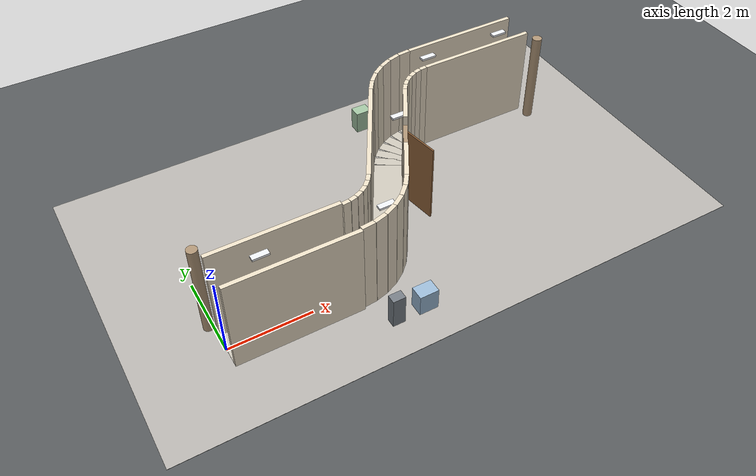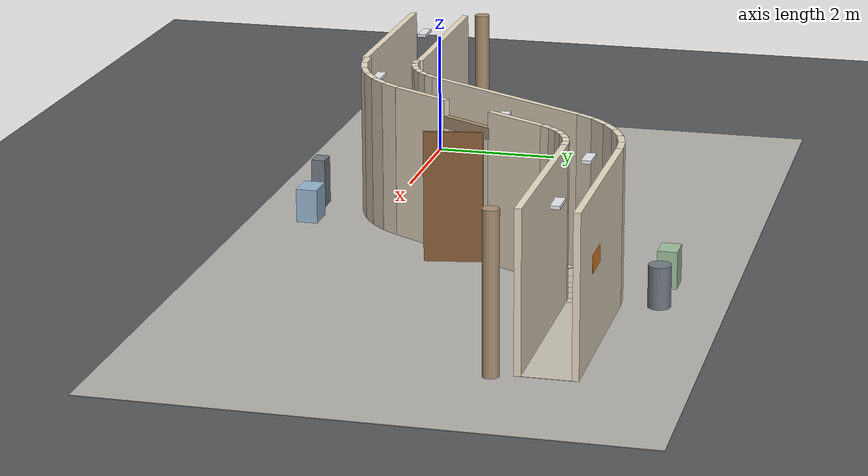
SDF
<sdf version='1.7'>
  <world name='slam_s_curve_corridor'>
    <light name='sun' type='directional'>
      <cast_shadows>1</cast_shadows>
      <pose>0 0 10 0 0 0</pose>
      <diffuse>0.75 0.75 0.75 1</diffuse>
      <specular>0.2 0.2 0.2 1</specular>
      <attenuation>
        <range>1000</range>
        <constant>0.9</constant>
        <linear>0.01</linear>
        <quadratic>0.001</quadratic>
      </attenuation>
      <direction>-0.4 0.1 -0.9</direction>
    </light>
    <light name="s_light_1" type="point">
  <pose>1.0000 0.0000 2.2800 0.0000 0.0000 0.0000</pose>
  <diffuse>1.000 0.980 0.920 1.000</diffuse>
  <specular>0.200 0.200 0.200 1.000</specular>
  <attenuation>
    <range>8</range>
    <constant>0.4</constant>
    <linear>0.2571</linear>
    <quadratic>0.0429</quadratic>
  </attenuation>
  <cast_shadows>1</cast_shadows>
</light>
    <light name="s_light_2" type="point">
  <pose>3.7000 0.3000 2.2800 0.0000 0.0000 0.0000</pose>
  <diffuse>1.000 0.980 0.920 1.000</diffuse>
  <specular>0.200 0.200 0.200 1.000</specular>
  <attenuation>
    <range>8</range>
    <constant>0.4</constant>
    <linear>0.2571</linear>
    <quadratic>0.0429</quadratic>
  </attenuation>
  <cast_shadows>1</cast_shadows>
</light>
    <light name="s_light_3" type="point">
  <pose>5.4000 2.2000 2.2800 0.0000 0.0000 0.0000</pose>
  <diffuse>1.000 0.980 0.920 1.000</diffuse>
  <specular>0.200 0.200 0.200 1.000</specular>
  <attenuation>
    <range>8</range>
    <constant>0.4</constant>
    <linear>0.2571</linear>
    <quadratic>0.0429</quadratic>
  </attenuation>
  <cast_shadows>1</cast_shadows>
</light>
    <light name="s_light_4" type="point">
  <pose>7.0000 3.9000 2.2800 0.0000 0.0000 0.0000</pose>
  <diffuse>1.000 0.980 0.920 1.000</diffuse>
  <specular>0.200 0.200 0.200 1.000</specular>
  <attenuation>
    <range>8</range>
    <constant>0.4</constant>
    <linear>0.2571</linear>
    <quadratic>0.0429</quadratic>
  </attenuation>
  <cast_shadows>1</cast_shadows>
</light>
    <light name="s_light_5" type="point">
  <pose>9.3000 4.0000 2.2800 0.0000 0.0000 0.0000</pose>
  <diffuse>1.000 0.980 0.920 1.000</diffuse>
  <specular>0.200 0.200 0.200 1.000</specular>
  <attenuation>
    <range>8</range>
    <constant>0.4</constant>
    <linear>0.2571</linear>
    <quadratic>0.0429</quadratic>
  </attenuation>
  <cast_shadows>1</cast_shadows>
</light>
    <gravity>0 0 -9.8</gravity>
    <physics type='ode'>
      <max_step_size>0.001</max_step_size>
      <real_time_factor>1</real_time_factor>
      <real_time_update_rate>1000</real_time_update_rate>
    </physics>
    <scene>
      <ambient>0.440 0.430 0.410 1</ambient>
      <background>0.800 0.800 0.790 1</background>
      <shadows>1</shadows>
    </scene>
    <model name="ground_plane">
  <static>1</static>
  <link name="link">
    <collision name="plane_collision">
  <pose>0.0000 0.0000 0.0000 0.0000 0.0000 0.0000</pose>
  <geometry><box><size>40.0000 40.0000 0.0200</size></box></geometry>
</collision>
<visual name="plane_visual">
  <pose>0.0000 0.0000 0.0000 0.0000 0.0000 0.0000</pose>
  <cast_shadows>1</cast_shadows>
  <geometry><box><size>40.0000 40.0000 0.0200</size></box></geometry>
  <material>
  <ambient>0.340 0.350 0.360 1.000</ambient>
  <diffuse>0.340 0.350 0.360 1.000</diffuse>
  <specular>0.080 0.080 0.080 1.000</specular>
</material>
</visual>
  </link>
</model>
    <model name="s_corridor_shell">
  <static>1</static>
  <link name="shell">
    <collision name="s1_left_collision">
  <pose>1.5000 0.4500 1.2000 0.0000 0.0000 0.0000</pose>
  <geometry><box><size>3.0000 0.1000 2.4000</size></box></geometry>
</collision>
<visual name="s1_left_visual">
  <pose>1.5000 0.4500 1.2000 0.0000 0.0000 0.0000</pose>
  <cast_shadows>1</cast_shadows>
  <geometry><box><size>3.0000 0.1000 2.4000</size></box></geometry>
  <material>
  <ambient>0.920 0.870 0.780 1.000</ambient>
  <diffuse>0.920 0.870 0.780 1.000</diffuse>
  <specular>0.080 0.080 0.080 1.000</specular>
</material>
</visual>
    <collision name="s1_right_collision">
  <pose>1.5000 -0.4500 1.2000 0.0000 0.0000 0.0000</pose>
  <geometry><box><size>3.0000 0.1000 2.4000</size></box></geometry>
</collision>
<visual name="s1_right_visual">
  <pose>1.5000 -0.4500 1.2000 0.0000 0.0000 0.0000</pose>
  <cast_shadows>1</cast_shadows>
  <geometry><box><size>3.0000 0.1000 2.4000</size></box></geometry>
  <material>
  <ambient>0.920 0.870 0.780 1.000</ambient>
  <diffuse>0.920 0.870 0.780 1.000</diffuse>
  <specular>0.080 0.080 0.080 1.000</specular>
</material>
</visual>
    <collision name="s2_left_collision">
  <pose>4.6441 2.2152 1.2000 0.0000 0.0000 1.0472</pose>
  <geometry><box><size>3.0000 0.1000 2.4000</size></box></geometry>
</collision>
<visual name="s2_left_visual">
  <pose>4.6441 2.2152 1.2000 0.0000 0.0000 1.0472</pose>
  <cast_shadows>1</cast_shadows>
  <geometry><box><size>3.0000 0.1000 2.4000</size></box></geometry>
  <material>
  <ambient>0.920 0.870 0.780 1.000</ambient>
  <diffuse>0.920 0.870 0.780 1.000</diffuse>
  <specular>0.080 0.080 0.080 1.000</specular>
</material>
</visual>
    <collision name="s2_right_a_collision">
  <pose>4.8494 0.9708 1.2000 0.0000 0.0000 1.0472</pose>
  <geometry><box><size>1.0500 0.1000 2.4000</size></box></geometry>
</collision>
<visual name="s2_right_a_visual">
  <pose>4.8494 0.9708 1.2000 0.0000 0.0000 1.0472</pose>
  <cast_shadows>1</cast_shadows>
  <geometry><box><size>1.0500 0.1000 2.4000</size></box></geometry>
  <material>
  <ambient>0.920 0.870 0.780 1.000</ambient>
  <diffuse>0.920 0.870 0.780 1.000</diffuse>
  <specular>0.080 0.080 0.080 1.000</specular>
</material>
</visual>
    <collision name="s2_right_b_collision">
  <pose>5.8244 2.6596 1.2000 0.0000 0.0000 1.0472</pose>
  <geometry><box><size>1.0500 0.1000 2.4000</size></box></geometry>
</collision>
<visual name="s2_right_b_visual">
  <pose>5.8244 2.6596 1.2000 0.0000 0.0000 1.0472</pose>
  <cast_shadows>1</cast_shadows>
  <geometry><box><size>1.0500 0.1000 2.4000</size></box></geometry>
  <material>
  <ambient>0.920 0.870 0.780 1.000</ambient>
  <diffuse>0.920 0.870 0.780 1.000</diffuse>
  <specular>0.080 0.080 0.080 1.000</specular>
</material>
</visual>
    <collision name="s3_left_collision">
  <pose>8.4810 4.4305 1.2000 0.0000 0.0000 0.0000</pose>
  <geometry><box><size>3.0000 0.1000 2.4000</size></box></geometry>
</collision>
<visual name="s3_left_visual">
  <pose>8.4810 4.4305 1.2000 0.0000 0.0000 0.0000</pose>
  <cast_shadows>1</cast_shadows>
  <geometry><box><size>3.0000 0.1000 2.4000</size></box></geometry>
  <material>
  <ambient>0.920 0.870 0.780 1.000</ambient>
  <diffuse>0.920 0.870 0.780 1.000</diffuse>
  <specular>0.080 0.080 0.080 1.000</specular>
</material>
</visual>
    <collision name="s3_right_collision">
  <pose>8.4810 3.6305 1.2000 0.0000 0.0000 0.0000</pose>
  <geometry><box><size>3.0000 0.1000 2.4000</size></box></geometry>
</collision>
<visual name="s3_right_visual">
  <pose>8.4810 3.6305 1.2000 0.0000 0.0000 0.0000</pose>
  <cast_shadows>1</cast_shadows>
  <geometry><box><size>3.0000 0.1000 2.4000</size></box></geometry>
  <material>
  <ambient>0.920 0.870 0.780 1.000</ambient>
  <diffuse>0.920 0.870 0.780 1.000</diffuse>
  <specular>0.080 0.080 0.080 1.000</specular>
</material>
</visual>
    <collision name="arc1_inner_1_collision">
  <pose>3.0896 0.4078 1.2000 0.0000 0.0000 0.0873</pose>
  <geometry><box><size>0.1800 0.1000 2.4000</size></box></geometry>
</collision>
<visual name="arc1_inner_1_visual">
  <pose>3.0896 0.4078 1.2000 0.0000 0.0000 0.0873</pose>
  <cast_shadows>1</cast_shadows>
  <geometry><box><size>0.1800 0.1000 2.4000</size></box></geometry>
  <material>
  <ambient>0.920 0.870 0.780 1.000</ambient>
  <diffuse>0.920 0.870 0.780 1.000</diffuse>
  <specular>0.080 0.080 0.080 1.000</specular>
</material>
</visual>
    <collision name="arc1_inner_2_collision">
  <pose>3.2662 0.4390 1.2000 0.0000 0.0000 0.2618</pose>
  <geometry><box><size>0.1800 0.1000 2.4000</size></box></geometry>
</collision>
<visual name="arc1_inner_2_visual">
  <pose>3.2662 0.4390 1.2000 0.0000 0.0000 0.2618</pose>
  <cast_shadows>1</cast_shadows>
  <geometry><box><size>0.1800 0.1000 2.4000</size></box></geometry>
  <material>
  <ambient>0.920 0.870 0.780 1.000</ambient>
  <diffuse>0.920 0.870 0.780 1.000</diffuse>
  <specular>0.080 0.080 0.080 1.000</specular>
</material>
</visual>
    <collision name="arc1_inner_3_collision">
  <pose>3.4346 0.5003 1.2000 0.0000 0.0000 0.4363</pose>
  <geometry><box><size>0.1800 0.1000 2.4000</size></box></geometry>
</collision>
<visual name="arc1_inner_3_visual">
  <pose>3.4346 0.5003 1.2000 0.0000 0.0000 0.4363</pose>
  <cast_shadows>1</cast_shadows>
  <geometry><box><size>0.1800 0.1000 2.4000</size></box></geometry>
  <material>
  <ambient>0.920 0.870 0.780 1.000</ambient>
  <diffuse>0.920 0.870 0.780 1.000</diffuse>
  <specular>0.080 0.080 0.080 1.000</specular>
</material>
</visual>
    <collision name="arc1_inner_4_collision">
  <pose>3.5899 0.5899 1.2000 0.0000 0.0000 0.6109</pose>
  <geometry><box><size>0.1800 0.1000 2.4000</size></box></geometry>
</collision>
<visual name="arc1_inner_4_visual">
  <pose>3.5899 0.5899 1.2000 0.0000 0.0000 0.6109</pose>
  <cast_shadows>1</cast_shadows>
  <geometry><box><size>0.1800 0.1000 2.4000</size></box></geometry>
  <material>
  <ambient>0.920 0.870 0.780 1.000</ambient>
  <diffuse>0.920 0.870 0.780 1.000</diffuse>
  <specular>0.080 0.080 0.080 1.000</specular>
</material>
</visual>
    <collision name="arc1_inner_5_collision">
  <pose>3.7272 0.7052 1.2000 0.0000 0.0000 0.7854</pose>
  <geometry><box><size>0.1800 0.1000 2.4000</size></box></geometry>
</collision>
<visual name="arc1_inner_5_visual">
  <pose>3.7272 0.7052 1.2000 0.0000 0.0000 0.7854</pose>
  <cast_shadows>1</cast_shadows>
  <geometry><box><size>0.1800 0.1000 2.4000</size></box></geometry>
  <material>
  <ambient>0.920 0.870 0.780 1.000</ambient>
  <diffuse>0.920 0.870 0.780 1.000</diffuse>
  <specular>0.080 0.080 0.080 1.000</specular>
</material>
</visual>
    <collision name="arc1_inner_6_collision">
  <pose>3.8425 0.8425 1.2000 0.0000 0.0000 0.9599</pose>
  <geometry><box><size>0.1800 0.1000 2.4000</size></box></geometry>
</collision>
<visual name="arc1_inner_6_visual">
  <pose>3.8425 0.8425 1.2000 0.0000 0.0000 0.9599</pose>
  <cast_shadows>1</cast_shadows>
  <geometry><box><size>0.1800 0.1000 2.4000</size></box></geometry>
  <material>
  <ambient>0.920 0.870 0.780 1.000</ambient>
  <diffuse>0.920 0.870 0.780 1.000</diffuse>
  <specular>0.080 0.080 0.080 1.000</specular>
</material>
</visual>
    <collision name="arc1_outer_1_collision">
  <pose>3.1591 -0.3861 1.2000 0.0000 0.0000 0.0873</pose>
  <geometry><box><size>0.3194 0.1000 2.4000</size></box></geometry>
</collision>
<visual name="arc1_outer_1_visual">
  <pose>3.1591 -0.3861 1.2000 0.0000 0.0000 0.0873</pose>
  <cast_shadows>1</cast_shadows>
  <geometry><box><size>0.3194 0.1000 2.4000</size></box></geometry>
  <material>
  <ambient>0.920 0.870 0.780 1.000</ambient>
  <diffuse>0.920 0.870 0.780 1.000</diffuse>
  <specular>0.080 0.080 0.080 1.000</specular>
</material>
</visual>
    <collision name="arc1_outer_2_collision">
  <pose>3.4725 -0.3308 1.2000 0.0000 0.0000 0.2618</pose>
  <geometry><box><size>0.3194 0.1000 2.4000</size></box></geometry>
</collision>
<visual name="arc1_outer_2_visual">
  <pose>3.4725 -0.3308 1.2000 0.0000 0.0000 0.2618</pose>
  <cast_shadows>1</cast_shadows>
  <geometry><box><size>0.3194 0.1000 2.4000</size></box></geometry>
  <material>
  <ambient>0.920 0.870 0.780 1.000</ambient>
  <diffuse>0.920 0.870 0.780 1.000</diffuse>
  <specular>0.080 0.080 0.080 1.000</specular>
</material>
</visual>
    <collision name="arc1_outer_3_collision">
  <pose>3.7715 -0.2220 1.2000 0.0000 0.0000 0.4363</pose>
  <geometry><box><size>0.3194 0.1000 2.4000</size></box></geometry>
</collision>
<visual name="arc1_outer_3_visual">
  <pose>3.7715 -0.2220 1.2000 0.0000 0.0000 0.4363</pose>
  <cast_shadows>1</cast_shadows>
  <geometry><box><size>0.3194 0.1000 2.4000</size></box></geometry>
  <material>
  <ambient>0.920 0.870 0.780 1.000</ambient>
  <diffuse>0.920 0.870 0.780 1.000</diffuse>
  <specular>0.080 0.080 0.080 1.000</specular>
</material>
</visual>
    <collision name="arc1_outer_4_collision">
  <pose>4.0470 -0.0629 1.2000 0.0000 0.0000 0.6109</pose>
  <geometry><box><size>0.3194 0.1000 2.4000</size></box></geometry>
</collision>
<visual name="arc1_outer_4_visual">
  <pose>4.0470 -0.0629 1.2000 0.0000 0.0000 0.6109</pose>
  <cast_shadows>1</cast_shadows>
  <geometry><box><size>0.3194 0.1000 2.4000</size></box></geometry>
  <material>
  <ambient>0.920 0.870 0.780 1.000</ambient>
  <diffuse>0.920 0.870 0.780 1.000</diffuse>
  <specular>0.080 0.080 0.080 1.000</specular>
</material>
</visual>
    <collision name="arc1_outer_5_collision">
  <pose>4.2908 0.1416 1.2000 0.0000 0.0000 0.7854</pose>
  <geometry><box><size>0.3194 0.1000 2.4000</size></box></geometry>
</collision>
<visual name="arc1_outer_5_visual">
  <pose>4.2908 0.1416 1.2000 0.0000 0.0000 0.7854</pose>
  <cast_shadows>1</cast_shadows>
  <geometry><box><size>0.3194 0.1000 2.4000</size></box></geometry>
  <material>
  <ambient>0.920 0.870 0.780 1.000</ambient>
  <diffuse>0.920 0.870 0.780 1.000</diffuse>
  <specular>0.080 0.080 0.080 1.000</specular>
</material>
</visual>
    <collision name="arc1_outer_6_collision">
  <pose>4.4953 0.3854 1.2000 0.0000 0.0000 0.9599</pose>
  <geometry><box><size>0.3194 0.1000 2.4000</size></box></geometry>
</collision>
<visual name="arc1_outer_6_visual">
  <pose>4.4953 0.3854 1.2000 0.0000 0.0000 0.9599</pose>
  <cast_shadows>1</cast_shadows>
  <geometry><box><size>0.3194 0.1000 2.4000</size></box></geometry>
  <material>
  <ambient>0.920 0.870 0.780 1.000</ambient>
  <diffuse>0.920 0.870 0.780 1.000</diffuse>
  <specular>0.080 0.080 0.080 1.000</specular>
</material>
</visual>
    <collision name="arc2_inner_1_collision">
  <pose>6.1385 3.1880 1.2000 0.0000 0.0000 0.9599</pose>
  <geometry><box><size>0.1800 0.1000 2.4000</size></box></geometry>
</collision>
<visual name="arc2_inner_1_visual">
  <pose>6.1385 3.1880 1.2000 0.0000 0.0000 0.9599</pose>
  <cast_shadows>1</cast_shadows>
  <geometry><box><size>0.1800 0.1000 2.4000</size></box></geometry>
  <material>
  <ambient>0.920 0.870 0.780 1.000</ambient>
  <diffuse>0.920 0.870 0.780 1.000</diffuse>
  <specular>0.080 0.080 0.080 1.000</specular>
</material>
</visual>
    <collision name="arc2_inner_2_collision">
  <pose>6.2537 3.3253 1.2000 0.0000 0.0000 0.7854</pose>
  <geometry><box><size>0.1800 0.1000 2.4000</size></box></geometry>
</collision>
<visual name="arc2_inner_2_visual">
  <pose>6.2537 3.3253 1.2000 0.0000 0.0000 0.7854</pose>
  <cast_shadows>1</cast_shadows>
  <geometry><box><size>0.1800 0.1000 2.4000</size></box></geometry>
  <material>
  <ambient>0.920 0.870 0.780 1.000</ambient>
  <diffuse>0.920 0.870 0.780 1.000</diffuse>
  <specular>0.080 0.080 0.080 1.000</specular>
</material>
</visual>
    <collision name="arc2_inner_3_collision">
  <pose>6.3911 3.4405 1.2000 0.0000 0.0000 0.6109</pose>
  <geometry><box><size>0.1800 0.1000 2.4000</size></box></geometry>
</collision>
<visual name="arc2_inner_3_visual">
  <pose>6.3911 3.4405 1.2000 0.0000 0.0000 0.6109</pose>
  <cast_shadows>1</cast_shadows>
  <geometry><box><size>0.1800 0.1000 2.4000</size></box></geometry>
  <material>
  <ambient>0.920 0.870 0.780 1.000</ambient>
  <diffuse>0.920 0.870 0.780 1.000</diffuse>
  <specular>0.080 0.080 0.080 1.000</specular>
</material>
</visual>
    <collision name="arc2_inner_4_collision">
  <pose>6.5463 3.5302 1.2000 0.0000 0.0000 0.4363</pose>
  <geometry><box><size>0.1800 0.1000 2.4000</size></box></geometry>
</collision>
<visual name="arc2_inner_4_visual">
  <pose>6.5463 3.5302 1.2000 0.0000 0.0000 0.4363</pose>
  <cast_shadows>1</cast_shadows>
  <geometry><box><size>0.1800 0.1000 2.4000</size></box></geometry>
  <material>
  <ambient>0.920 0.870 0.780 1.000</ambient>
  <diffuse>0.920 0.870 0.780 1.000</diffuse>
  <specular>0.080 0.080 0.080 1.000</specular>
</material>
</visual>
    <collision name="arc2_inner_5_collision">
  <pose>6.7148 3.5915 1.2000 0.0000 0.0000 0.2618</pose>
  <geometry><box><size>0.1800 0.1000 2.4000</size></box></geometry>
</collision>
<visual name="arc2_inner_5_visual">
  <pose>6.7148 3.5915 1.2000 0.0000 0.0000 0.2618</pose>
  <cast_shadows>1</cast_shadows>
  <geometry><box><size>0.1800 0.1000 2.4000</size></box></geometry>
  <material>
  <ambient>0.920 0.870 0.780 1.000</ambient>
  <diffuse>0.920 0.870 0.780 1.000</diffuse>
  <specular>0.080 0.080 0.080 1.000</specular>
</material>
</visual>
    <collision name="arc2_inner_6_collision">
  <pose>6.8913 3.6226 1.2000 0.0000 0.0000 0.0873</pose>
  <geometry><box><size>0.1800 0.1000 2.4000</size></box></geometry>
</collision>
<visual name="arc2_inner_6_visual">
  <pose>6.8913 3.6226 1.2000 0.0000 0.0000 0.0873</pose>
  <cast_shadows>1</cast_shadows>
  <geometry><box><size>0.1800 0.1000 2.4000</size></box></geometry>
  <material>
  <ambient>0.920 0.870 0.780 1.000</ambient>
  <diffuse>0.920 0.870 0.780 1.000</diffuse>
  <specular>0.080 0.080 0.080 1.000</specular>
</material>
</visual>
    <collision name="arc2_outer_1_collision">
  <pose>5.4857 3.6451 1.2000 0.0000 0.0000 0.9599</pose>
  <geometry><box><size>0.3194 0.1000 2.4000</size></box></geometry>
</collision>
<visual name="arc2_outer_1_visual">
  <pose>5.4857 3.6451 1.2000 0.0000 0.0000 0.9599</pose>
  <cast_shadows>1</cast_shadows>
  <geometry><box><size>0.3194 0.1000 2.4000</size></box></geometry>
  <material>
  <ambient>0.920 0.870 0.780 1.000</ambient>
  <diffuse>0.920 0.870 0.780 1.000</diffuse>
  <specular>0.080 0.080 0.080 1.000</specular>
</material>
</visual>
    <collision name="arc2_outer_2_collision">
  <pose>5.6902 3.8888 1.2000 0.0000 0.0000 0.7854</pose>
  <geometry><box><size>0.3194 0.1000 2.4000</size></box></geometry>
</collision>
<visual name="arc2_outer_2_visual">
  <pose>5.6902 3.8888 1.2000 0.0000 0.0000 0.7854</pose>
  <cast_shadows>1</cast_shadows>
  <geometry><box><size>0.3194 0.1000 2.4000</size></box></geometry>
  <material>
  <ambient>0.920 0.870 0.780 1.000</ambient>
  <diffuse>0.920 0.870 0.780 1.000</diffuse>
  <specular>0.080 0.080 0.080 1.000</specular>
</material>
</visual>
    <collision name="arc2_outer_3_collision">
  <pose>5.9340 4.0934 1.2000 0.0000 0.0000 0.6109</pose>
  <geometry><box><size>0.3194 0.1000 2.4000</size></box></geometry>
</collision>
<visual name="arc2_outer_3_visual">
  <pose>5.9340 4.0934 1.2000 0.0000 0.0000 0.6109</pose>
  <cast_shadows>1</cast_shadows>
  <geometry><box><size>0.3194 0.1000 2.4000</size></box></geometry>
  <material>
  <ambient>0.920 0.870 0.780 1.000</ambient>
  <diffuse>0.920 0.870 0.780 1.000</diffuse>
  <specular>0.080 0.080 0.080 1.000</specular>
</material>
</visual>
    <collision name="arc2_outer_4_collision">
  <pose>6.2095 4.2525 1.2000 0.0000 0.0000 0.4363</pose>
  <geometry><box><size>0.3194 0.1000 2.4000</size></box></geometry>
</collision>
<visual name="arc2_outer_4_visual">
  <pose>6.2095 4.2525 1.2000 0.0000 0.0000 0.4363</pose>
  <cast_shadows>1</cast_shadows>
  <geometry><box><size>0.3194 0.1000 2.4000</size></box></geometry>
  <material>
  <ambient>0.920 0.870 0.780 1.000</ambient>
  <diffuse>0.920 0.870 0.780 1.000</diffuse>
  <specular>0.080 0.080 0.080 1.000</specular>
</material>
</visual>
    <collision name="arc2_outer_5_collision">
  <pose>6.5085 4.3613 1.2000 0.0000 0.0000 0.2618</pose>
  <geometry><box><size>0.3194 0.1000 2.4000</size></box></geometry>
</collision>
<visual name="arc2_outer_5_visual">
  <pose>6.5085 4.3613 1.2000 0.0000 0.0000 0.2618</pose>
  <cast_shadows>1</cast_shadows>
  <geometry><box><size>0.3194 0.1000 2.4000</size></box></geometry>
  <material>
  <ambient>0.920 0.870 0.780 1.000</ambient>
  <diffuse>0.920 0.870 0.780 1.000</diffuse>
  <specular>0.080 0.080 0.080 1.000</specular>
</material>
</visual>
    <collision name="arc2_outer_6_collision">
  <pose>6.8219 4.4166 1.2000 0.0000 0.0000 0.0873</pose>
  <geometry><box><size>0.3194 0.1000 2.4000</size></box></geometry>
</collision>
<visual name="arc2_outer_6_visual">
  <pose>6.8219 4.4166 1.2000 0.0000 0.0000 0.0873</pose>
  <cast_shadows>1</cast_shadows>
  <geometry><box><size>0.3194 0.1000 2.4000</size></box></geometry>
  <material>
  <ambient>0.920 0.870 0.780 1.000</ambient>
  <diffuse>0.920 0.870 0.780 1.000</diffuse>
  <specular>0.080 0.080 0.080 1.000</specular>
</material>
</visual>
    <visual name="s_fixture_1_visual">
  <pose>1.0000 0.0000 2.3200 0.0000 0.0000 0.0000</pose>
  <cast_shadows>1</cast_shadows>
  <geometry><box><size>0.3800 0.1400 0.0500</size></box></geometry>
  <material>
  <ambient>0.920 0.930 0.950 1.000</ambient>
  <diffuse>0.920 0.930 0.950 1.000</diffuse>
  <specular>0.080 0.080 0.080 1.000</specular>
</material>
</visual>
    <visual name="s_fixture_2_visual">
  <pose>3.8000 0.0000 2.3200 0.0000 0.0000 0.0000</pose>
  <cast_shadows>1</cast_shadows>
  <geometry><box><size>0.3800 0.1400 0.0500</size></box></geometry>
  <material>
  <ambient>0.920 0.930 0.950 1.000</ambient>
  <diffuse>0.920 0.930 0.950 1.000</diffuse>
  <specular>0.080 0.080 0.080 1.000</specular>
</material>
</visual>
    <visual name="s_fixture_3_visual">
  <pose>5.5000 2.4000 2.3200 0.0000 0.0000 0.0000</pose>
  <cast_shadows>1</cast_shadows>
  <geometry><box><size>0.3800 0.1400 0.0500</size></box></geometry>
  <material>
  <ambient>0.920 0.930 0.950 1.000</ambient>
  <diffuse>0.920 0.930 0.950 1.000</diffuse>
  <specular>0.080 0.080 0.080 1.000</specular>
</material>
</visual>
    <visual name="s_fixture_4_visual">
  <pose>7.3000 4.0500 2.3200 0.0000 0.0000 0.0000</pose>
  <cast_shadows>1</cast_shadows>
  <geometry><box><size>0.3800 0.1400 0.0500</size></box></geometry>
  <material>
  <ambient>0.920 0.930 0.950 1.000</ambient>
  <diffuse>0.920 0.930 0.950 1.000</diffuse>
  <specular>0.080 0.080 0.080 1.000</specular>
</material>
</visual>
    <visual name="s_fixture_5_visual">
  <pose>9.4000 4.0500 2.3200 0.0000 0.0000 0.0000</pose>
  <cast_shadows>1</cast_shadows>
  <geometry><box><size>0.3800 0.1400 0.0500</size></box></geometry>
  <material>
  <ambient>0.920 0.930 0.950 1.000</ambient>
  <diffuse>0.920 0.930 0.950 1.000</diffuse>
  <specular>0.080 0.080 0.080 1.000</specular>
</material>
</visual>
  </link>
</model>
    <model name="s_corridor_floor">
  <static>1</static>
  <link name="floor">
    <collision name="s_floor_pad_collision">
  <pose>5.0000 2.0000 0.0100 0.0000 0.0000 0.0000</pose>
  <geometry><box><size>14.0000 8.0000 0.0200</size></box></geometry>
</collision>
<visual name="s_floor_pad_visual">
  <pose>5.0000 2.0000 0.0100 0.0000 0.0000 0.0000</pose>
  <cast_shadows>1</cast_shadows>
  <geometry><box><size>14.0000 8.0000 0.0200</size></box></geometry>
  <material>
  <ambient>0.710 0.700 0.680 1.000</ambient>
  <diffuse>0.710 0.700 0.680 1.000</diffuse>
  <specular>0.080 0.080 0.080 1.000</specular>
</material>
</visual>
    <visual name="s_floor_1_visual">
  <pose>1.5000 0.0000 0.0170 0.0000 0.0000 0.0000</pose>
  <cast_shadows>1</cast_shadows>
  <geometry><box><size>3.0000 0.8000 0.0150</size></box></geometry>
  <material>
  <ambient>0.790 0.770 0.720 1.000</ambient>
  <diffuse>0.790 0.770 0.720 1.000</diffuse>
  <specular>0.080 0.080 0.080 1.000</specular>
</material>
</visual>
    <visual name="s_floor_2_visual">
  <pose>4.9905 2.0152 0.0170 0.0000 0.0000 1.0472</pose>
  <cast_shadows>1</cast_shadows>
  <geometry><box><size>3.0000 0.8000 0.0150</size></box></geometry>
  <material>
  <ambient>0.790 0.770 0.720 1.000</ambient>
  <diffuse>0.790 0.770 0.720 1.000</diffuse>
  <specular>0.080 0.080 0.080 1.000</specular>
</material>
</visual>
    <visual name="s_floor_3_visual">
  <pose>8.4810 4.0305 0.0170 0.0000 0.0000 0.0000</pose>
  <cast_shadows>1</cast_shadows>
  <geometry><box><size>3.0000 0.8000 0.0150</size></box></geometry>
  <material>
  <ambient>0.790 0.770 0.720 1.000</ambient>
  <diffuse>0.790 0.770 0.720 1.000</diffuse>
  <specular>0.080 0.080 0.080 1.000</specular>
</material>
</visual>
    <visual name="s_arc_floor_1_visual">
  <pose>3.1244 0.0109 0.0170 0.0000 0.0000 0.0873</pose>
  <cast_shadows>1</cast_shadows>
  <geometry><box><size>0.2497 0.8000 0.0150</size></box></geometry>
  <material>
  <ambient>0.790 0.770 0.720 1.000</ambient>
  <diffuse>0.790 0.770 0.720 1.000</diffuse>
  <specular>0.080 0.080 0.080 1.000</specular>
</material>
</visual>
    <visual name="s_arc_floor_2_visual">
  <pose>3.3693 0.0541 0.0170 0.0000 0.0000 0.2618</pose>
  <cast_shadows>1</cast_shadows>
  <geometry><box><size>0.2497 0.8000 0.0150</size></box></geometry>
  <material>
  <ambient>0.790 0.770 0.720 1.000</ambient>
  <diffuse>0.790 0.770 0.720 1.000</diffuse>
  <specular>0.080 0.080 0.080 1.000</specular>
</material>
</visual>
    <visual name="s_arc_floor_3_visual">
  <pose>3.6031 0.1391 0.0170 0.0000 0.0000 0.4363</pose>
  <cast_shadows>1</cast_shadows>
  <geometry><box><size>0.2497 0.8000 0.0150</size></box></geometry>
  <material>
  <ambient>0.790 0.770 0.720 1.000</ambient>
  <diffuse>0.790 0.770 0.720 1.000</diffuse>
  <specular>0.080 0.080 0.080 1.000</specular>
</material>
</visual>
    <visual name="s_arc_floor_4_visual">
  <pose>3.8185 0.2635 0.0170 0.0000 0.0000 0.6109</pose>
  <cast_shadows>1</cast_shadows>
  <geometry><box><size>0.2497 0.8000 0.0150</size></box></geometry>
  <material>
  <ambient>0.790 0.770 0.720 1.000</ambient>
  <diffuse>0.790 0.770 0.720 1.000</diffuse>
  <specular>0.080 0.080 0.080 1.000</specular>
</material>
</visual>
    <visual name="s_arc_floor_5_visual">
  <pose>4.0090 0.4234 0.0170 0.0000 0.0000 0.7854</pose>
  <cast_shadows>1</cast_shadows>
  <geometry><box><size>0.2497 0.8000 0.0150</size></box></geometry>
  <material>
  <ambient>0.790 0.770 0.720 1.000</ambient>
  <diffuse>0.790 0.770 0.720 1.000</diffuse>
  <specular>0.080 0.080 0.080 1.000</specular>
</material>
</visual>
    <visual name="s_arc_floor_6_visual">
  <pose>4.1689 0.6139 0.0170 0.0000 0.0000 0.9599</pose>
  <cast_shadows>1</cast_shadows>
  <geometry><box><size>0.2497 0.8000 0.0150</size></box></geometry>
  <material>
  <ambient>0.790 0.770 0.720 1.000</ambient>
  <diffuse>0.790 0.770 0.720 1.000</diffuse>
  <specular>0.080 0.080 0.080 1.000</specular>
</material>
</visual>
    <visual name="s_arc_floor_7_visual">
  <pose>5.8121 3.4165 0.0170 0.0000 0.0000 0.9599</pose>
  <cast_shadows>1</cast_shadows>
  <geometry><box><size>0.2497 0.8000 0.0150</size></box></geometry>
  <material>
  <ambient>0.790 0.770 0.720 1.000</ambient>
  <diffuse>0.790 0.770 0.720 1.000</diffuse>
  <specular>0.080 0.080 0.080 1.000</specular>
</material>
</visual>
    <visual name="s_arc_floor_8_visual">
  <pose>5.9720 3.6071 0.0170 0.0000 0.0000 0.7854</pose>
  <cast_shadows>1</cast_shadows>
  <geometry><box><size>0.2497 0.8000 0.0150</size></box></geometry>
  <material>
  <ambient>0.790 0.770 0.720 1.000</ambient>
  <diffuse>0.790 0.770 0.720 1.000</diffuse>
  <specular>0.080 0.080 0.080 1.000</specular>
</material>
</visual>
    <visual name="s_arc_floor_9_visual">
  <pose>6.1625 3.7670 0.0170 0.0000 0.0000 0.6109</pose>
  <cast_shadows>1</cast_shadows>
  <geometry><box><size>0.2497 0.8000 0.0150</size></box></geometry>
  <material>
  <ambient>0.790 0.770 0.720 1.000</ambient>
  <diffuse>0.790 0.770 0.720 1.000</diffuse>
  <specular>0.080 0.080 0.080 1.000</specular>
</material>
</visual>
    <visual name="s_arc_floor_10_visual">
  <pose>6.3779 3.8913 0.0170 0.0000 0.0000 0.4363</pose>
  <cast_shadows>1</cast_shadows>
  <geometry><box><size>0.2497 0.8000 0.0150</size></box></geometry>
  <material>
  <ambient>0.790 0.770 0.720 1.000</ambient>
  <diffuse>0.790 0.770 0.720 1.000</diffuse>
  <specular>0.080 0.080 0.080 1.000</specular>
</material>
</visual>
    <visual name="s_arc_floor_11_visual">
  <pose>6.6117 3.9764 0.0170 0.0000 0.0000 0.2618</pose>
  <cast_shadows>1</cast_shadows>
  <geometry><box><size>0.2497 0.8000 0.0150</size></box></geometry>
  <material>
  <ambient>0.790 0.770 0.720 1.000</ambient>
  <diffuse>0.790 0.770 0.720 1.000</diffuse>
  <specular>0.080 0.080 0.080 1.000</specular>
</material>
</visual>
    <visual name="s_arc_floor_12_visual">
  <pose>6.8566 4.0196 0.0170 0.0000 0.0000 0.0873</pose>
  <cast_shadows>1</cast_shadows>
  <geometry><box><size>0.2497 0.8000 0.0150</size></box></geometry>
  <material>
  <ambient>0.790 0.770 0.720 1.000</ambient>
  <diffuse>0.790 0.770 0.720 1.000</diffuse>
  <specular>0.080 0.080 0.080 1.000</specular>
</material>
</visual>
  </link>
</model>
    <model name="s_corridor_features">
  <static>1</static>
  <link name="features">
    <collision name="start_pillar_collision">
  <pose>-0.1000 0.7200 1.2000 0.0000 0.0000 0.0000</pose>
  <geometry><cylinder><radius>0.1200</radius><length>2.4000</length></cylinder></geometry>
</collision>
<visual name="start_pillar_visual">
  <pose>-0.1000 0.7200 1.2000 0.0000 0.0000 0.0000</pose>
  <geometry><cylinder><radius>0.1200</radius><length>2.4000</length></cylinder></geometry>
  <material>
  <ambient>0.680 0.580 0.460 1.000</ambient>
  <diffuse>0.680 0.580 0.460 1.000</diffuse>
  <specular>0.080 0.080 0.080 1.000</specular>
</material>
</visual>
    <collision name="end_pillar_collision">
  <pose>10.0500 3.2800 1.2000 0.0000 0.0000 0.0000</pose>
  <geometry><cylinder><radius>0.1200</radius><length>2.4000</length></cylinder></geometry>
</collision>
<visual name="end_pillar_visual">
  <pose>10.0500 3.2800 1.2000 0.0000 0.0000 0.0000</pose>
  <geometry><cylinder><radius>0.1200</radius><length>2.4000</length></cylinder></geometry>
  <material>
  <ambient>0.680 0.580 0.460 1.000</ambient>
  <diffuse>0.680 0.580 0.460 1.000</diffuse>
  <specular>0.080 0.080 0.080 1.000</specular>
</material>
</visual>
    <visual name="door_header_visual">
  <pose>5.3369 1.8152 2.0600 0.0000 0.0000 1.0472</pose>
  <cast_shadows>1</cast_shadows>
  <geometry><box><size>0.9500 0.1000 0.1800</size></box></geometry>
  <material>
  <ambient>0.680 0.580 0.460 1.000</ambient>
  <diffuse>0.680 0.580 0.460 1.000</diffuse>
  <specular>0.080 0.080 0.080 1.000</specular>
</material>
</visual>
    <collision name="door_leaf_collision">
  <pose>5.6200 1.6500 1.0300 0.0000 0.0000 0.1800</pose>
  <geometry><box><size>0.0400 0.9000 2.0600</size></box></geometry>
</collision>
<visual name="door_leaf_visual">
  <pose>5.6200 1.6500 1.0300 0.0000 0.0000 0.1800</pose>
  <cast_shadows>1</cast_shadows>
  <geometry><box><size>0.0400 0.9000 2.0600</size></box></geometry>
  <material>
  <ambient>0.560 0.380 0.220 1.000</ambient>
  <diffuse>0.560 0.380 0.220 1.000</diffuse>
  <specular>0.080 0.080 0.080 1.000</specular>
</material>
</visual>
    <collision name="clutter_b1_crate_collision">
  <pose>4.1500 -1.0500 0.2800 0.0000 0.0000 0.0000</pose>
  <geometry><box><size>0.4600 0.3400 0.5600</size></box></geometry>
</collision>
<visual name="clutter_b1_crate_visual">
  <pose>4.1500 -1.0500 0.2800 0.0000 0.0000 0.0000</pose>
  <cast_shadows>1</cast_shadows>
  <geometry><box><size>0.4600 0.3400 0.5600</size></box></geometry>
  <material>
  <ambient>0.600 0.720 0.830 1.000</ambient>
  <diffuse>0.600 0.720 0.830 1.000</diffuse>
  <specular>0.080 0.080 0.080 1.000</specular>
</material>
</visual>
    <collision name="clutter_b1_cart_collision">
  <pose>3.4200 -1.1000 0.4000 0.0000 0.0000 0.0000</pose>
  <geometry><box><size>0.3000 0.2200 0.8000</size></box></geometry>
</collision>
<visual name="clutter_b1_cart_visual">
  <pose>3.4200 -1.1000 0.4000 0.0000 0.0000 0.0000</pose>
  <cast_shadows>1</cast_shadows>
  <geometry><box><size>0.3000 0.2200 0.8000</size></box></geometry>
  <material>
  <ambient>0.460 0.490 0.520 1.000</ambient>
  <diffuse>0.460 0.490 0.520 1.000</diffuse>
  <specular>0.080 0.080 0.080 1.000</specular>
</material>
</visual>
    <collision name="clutter_b2_stack_collision">
  <pose>5.9000 5.0000 0.3000 0.0000 0.0000 0.0000</pose>
  <geometry><box><size>0.4000 0.3000 0.6000</size></box></geometry>
</collision>
<visual name="clutter_b2_stack_visual">
  <pose>5.9000 5.0000 0.3000 0.0000 0.0000 0.0000</pose>
  <cast_shadows>1</cast_shadows>
  <geometry><box><size>0.4000 0.3000 0.6000</size></box></geometry>
  <material>
  <ambient>0.630 0.760 0.630 1.000</ambient>
  <diffuse>0.630 0.760 0.630 1.000</diffuse>
  <specular>0.080 0.080 0.080 1.000</specular>
</material>
</visual>
    <collision name="clutter_b2_bin_collision">
  <pose>6.8500 5.0200 0.3300 0.0000 0.0000 0.0000</pose>
  <geometry><cylinder><radius>0.1700</radius><length>0.6600</length></cylinder></geometry>
</collision>
<visual name="clutter_b2_bin_visual">
  <pose>6.8500 5.0200 0.3300 0.0000 0.0000 0.0000</pose>
  <geometry><cylinder><radius>0.1700</radius><length>0.6600</length></cylinder></geometry>
  <material>
  <ambient>0.460 0.490 0.520 1.000</ambient>
  <diffuse>0.460 0.490 0.520 1.000</diffuse>
  <specular>0.080 0.080 0.080 1.000</specular>
</material>
</visual>
    <visual name="corridor_sign_visual">
  <pose>8.9000 4.4850 1.4000 0.0000 0.0000 0.0000</pose>
  <cast_shadows>1</cast_shadows>
  <geometry><box><size>0.5000 0.0100 0.2600</size></box></geometry>
  <material>
  <ambient>0.920 0.530 0.180 1.000</ambient>
  <diffuse>0.920 0.530 0.180 1.000</diffuse>
  <specular>0.080 0.080 0.080 1.000</specular>
</material>
</visual>
    <visual name="bend1_tag_1_plaque_visual">
  <pose>2.6000 0.3940 1.2000 0.0000 0.0000 0.0000</pose>
  <cast_shadows>1</cast_shadows>
  <geometry><box><size>0.1800 0.0120 0.1800</size></box></geometry>
  <material>
  <ambient>0.960 0.960 0.960 1.000</ambient>
  <diffuse>0.960 0.960 0.960 1.000</diffuse>
  <specular>0.080 0.080 0.080 1.000</specular>
</material>
</visual>
    <visual name="bend1_tag_1_top_visual">
  <pose>2.6000 0.3940 1.2738 0.0000 0.0000 0.0000</pose>
  <cast_shadows>1</cast_shadows>
  <geometry><box><size>0.1800 0.0132 0.0324</size></box></geometry>
  <material>
  <ambient>0.050 0.050 0.050 1.000</ambient>
  <diffuse>0.050 0.050 0.050 1.000</diffuse>
  <specular>0.080 0.080 0.080 1.000</specular>
</material>
</visual>
    <visual name="bend1_tag_1_bottom_visual">
  <pose>2.6000 0.3940 1.1262 0.0000 0.0000 0.0000</pose>
  <cast_shadows>1</cast_shadows>
  <geometry><box><size>0.1800 0.0132 0.0324</size></box></geometry>
  <material>
  <ambient>0.050 0.050 0.050 1.000</ambient>
  <diffuse>0.050 0.050 0.050 1.000</diffuse>
  <specular>0.080 0.080 0.080 1.000</specular>
</material>
</visual>
    <visual name="bend1_tag_1_left_visual">
  <pose>2.5262 0.3940 1.2000 0.0000 0.0000 0.0000</pose>
  <cast_shadows>1</cast_shadows>
  <geometry><box><size>0.0324 0.0132 0.1800</size></box></geometry>
  <material>
  <ambient>0.050 0.050 0.050 1.000</ambient>
  <diffuse>0.050 0.050 0.050 1.000</diffuse>
  <specular>0.080 0.080 0.080 1.000</specular>
</material>
</visual>
    <visual name="bend1_tag_1_right_visual">
  <pose>2.6738 0.3940 1.2000 0.0000 0.0000 0.0000</pose>
  <cast_shadows>1</cast_shadows>
  <geometry><box><size>0.0324 0.0132 0.1800</size></box></geometry>
  <material>
  <ambient>0.050 0.050 0.050 1.000</ambient>
  <diffuse>0.050 0.050 0.050 1.000</diffuse>
  <specular>0.080 0.080 0.080 1.000</specular>
</material>
</visual>
    <visual name="bend1_tag_1_cell_1_visual">
  <pose>2.5680 0.3940 1.2320 0.0000 0.0000 0.0000</pose>
  <cast_shadows>1</cast_shadows>
  <geometry><box><size>0.0396 0.0132 0.0396</size></box></geometry>
  <material>
  <ambient>0.050 0.050 0.050 1.000</ambient>
  <diffuse>0.050 0.050 0.050 1.000</diffuse>
  <specular>0.080 0.080 0.080 1.000</specular>
</material>
</visual>
    <visual name="bend1_tag_1_cell_2_visual">
  <pose>2.6360 0.3940 1.1680 0.0000 0.0000 0.0000</pose>
  <cast_shadows>1</cast_shadows>
  <geometry><box><size>0.0396 0.0132 0.0396</size></box></geometry>
  <material>
  <ambient>0.050 0.050 0.050 1.000</ambient>
  <diffuse>0.050 0.050 0.050 1.000</diffuse>
  <specular>0.080 0.080 0.080 1.000</specular>
</material>
</visual>
    <visual name="bend1_tag_2_plaque_visual">
  <pose>4.0500 1.1600 1.5500 0.0000 0.0000 1.0472</pose>
  <cast_shadows>1</cast_shadows>
  <geometry><box><size>0.1800 0.0120 0.1800</size></box></geometry>
  <material>
  <ambient>0.960 0.960 0.960 1.000</ambient>
  <diffuse>0.960 0.960 0.960 1.000</diffuse>
  <specular>0.080 0.080 0.080 1.000</specular>
</material>
</visual>
    <visual name="bend1_tag_2_top_visual">
  <pose>4.0500 1.1600 1.6238 0.0000 0.0000 1.0472</pose>
  <cast_shadows>1</cast_shadows>
  <geometry><box><size>0.1800 0.0132 0.0324</size></box></geometry>
  <material>
  <ambient>0.050 0.050 0.050 1.000</ambient>
  <diffuse>0.050 0.050 0.050 1.000</diffuse>
  <specular>0.080 0.080 0.080 1.000</specular>
</material>
</visual>
    <visual name="bend1_tag_2_bottom_visual">
  <pose>4.0500 1.1600 1.4762 0.0000 0.0000 1.0472</pose>
  <cast_shadows>1</cast_shadows>
  <geometry><box><size>0.1800 0.0132 0.0324</size></box></geometry>
  <material>
  <ambient>0.050 0.050 0.050 1.000</ambient>
  <diffuse>0.050 0.050 0.050 1.000</diffuse>
  <specular>0.080 0.080 0.080 1.000</specular>
</material>
</visual>
    <visual name="bend1_tag_2_left_visual">
  <pose>4.0131 1.0961 1.5500 0.0000 0.0000 1.0472</pose>
  <cast_shadows>1</cast_shadows>
  <geometry><box><size>0.0324 0.0132 0.1800</size></box></geometry>
  <material>
  <ambient>0.050 0.050 0.050 1.000</ambient>
  <diffuse>0.050 0.050 0.050 1.000</diffuse>
  <specular>0.080 0.080 0.080 1.000</specular>
</material>
</visual>
    <visual name="bend1_tag_2_right_visual">
  <pose>4.0869 1.2239 1.5500 0.0000 0.0000 1.0472</pose>
  <cast_shadows>1</cast_shadows>
  <geometry><box><size>0.0324 0.0132 0.1800</size></box></geometry>
  <material>
  <ambient>0.050 0.050 0.050 1.000</ambient>
  <diffuse>0.050 0.050 0.050 1.000</diffuse>
  <specular>0.080 0.080 0.080 1.000</specular>
</material>
</visual>
    <visual name="bend1_tag_2_cell_1_visual">
  <pose>4.0320 1.1288 1.5860 0.0000 0.0000 1.0472</pose>
  <cast_shadows>1</cast_shadows>
  <geometry><box><size>0.0396 0.0132 0.0396</size></box></geometry>
  <material>
  <ambient>0.050 0.050 0.050 1.000</ambient>
  <diffuse>0.050 0.050 0.050 1.000</diffuse>
  <specular>0.080 0.080 0.080 1.000</specular>
</material>
</visual>
    <visual name="bend1_tag_2_cell_2_visual">
  <pose>4.0500 1.1600 1.5140 0.0000 0.0000 1.0472</pose>
  <cast_shadows>1</cast_shadows>
  <geometry><box><size>0.0396 0.0132 0.0396</size></box></geometry>
  <material>
  <ambient>0.050 0.050 0.050 1.000</ambient>
  <diffuse>0.050 0.050 0.050 1.000</diffuse>
  <specular>0.080 0.080 0.080 1.000</specular>
</material>
</visual>
    <visual name="bend1_tag_2_cell_3_visual">
  <pose>4.0680 1.1912 1.5860 0.0000 0.0000 1.0472</pose>
  <cast_shadows>1</cast_shadows>
  <geometry><box><size>0.0396 0.0132 0.0396</size></box></geometry>
  <material>
  <ambient>0.050 0.050 0.050 1.000</ambient>
  <diffuse>0.050 0.050 0.050 1.000</diffuse>
  <specular>0.080 0.080 0.080 1.000</specular>
</material>
</visual>
    <visual name="bend2_tag_1_plaque_visual">
  <pose>5.9800 2.9200 1.2000 0.0000 0.0000 1.0472</pose>
  <cast_shadows>1</cast_shadows>
  <geometry><box><size>0.1800 0.0120 0.1800</size></box></geometry>
  <material>
  <ambient>0.960 0.960 0.960 1.000</ambient>
  <diffuse>0.960 0.960 0.960 1.000</diffuse>
  <specular>0.080 0.080 0.080 1.000</specular>
</material>
</visual>
    <visual name="bend2_tag_1_top_visual">
  <pose>5.9800 2.9200 1.2738 0.0000 0.0000 1.0472</pose>
  <cast_shadows>1</cast_shadows>
  <geometry><box><size>0.1800 0.0132 0.0324</size></box></geometry>
  <material>
  <ambient>0.050 0.050 0.050 1.000</ambient>
  <diffuse>0.050 0.050 0.050 1.000</diffuse>
  <specular>0.080 0.080 0.080 1.000</specular>
</material>
</visual>
    <visual name="bend2_tag_1_bottom_visual">
  <pose>5.9800 2.9200 1.1262 0.0000 0.0000 1.0472</pose>
  <cast_shadows>1</cast_shadows>
  <geometry><box><size>0.1800 0.0132 0.0324</size></box></geometry>
  <material>
  <ambient>0.050 0.050 0.050 1.000</ambient>
  <diffuse>0.050 0.050 0.050 1.000</diffuse>
  <specular>0.080 0.080 0.080 1.000</specular>
</material>
</visual>
    <visual name="bend2_tag_1_left_visual">
  <pose>5.9431 2.8561 1.2000 0.0000 0.0000 1.0472</pose>
  <cast_shadows>1</cast_shadows>
  <geometry><box><size>0.0324 0.0132 0.1800</size></box></geometry>
  <material>
  <ambient>0.050 0.050 0.050 1.000</ambient>
  <diffuse>0.050 0.050 0.050 1.000</diffuse>
  <specular>0.080 0.080 0.080 1.000</specular>
</material>
</visual>
    <visual name="bend2_tag_1_right_visual">
  <pose>6.0169 2.9839 1.2000 0.0000 0.0000 1.0472</pose>
  <cast_shadows>1</cast_shadows>
  <geometry><box><size>0.0324 0.0132 0.1800</size></box></geometry>
  <material>
  <ambient>0.050 0.050 0.050 1.000</ambient>
  <diffuse>0.050 0.050 0.050 1.000</diffuse>
  <specular>0.080 0.080 0.080 1.000</specular>
</material>
</visual>
    <visual name="bend2_tag_1_cell_1_visual">
  <pose>5.9620 2.8888 1.1640 0.0000 0.0000 1.0472</pose>
  <cast_shadows>1</cast_shadows>
  <geometry><box><size>0.0396 0.0132 0.0396</size></box></geometry>
  <material>
  <ambient>0.050 0.050 0.050 1.000</ambient>
  <diffuse>0.050 0.050 0.050 1.000</diffuse>
  <specular>0.080 0.080 0.080 1.000</specular>
</material>
</visual>
    <visual name="bend2_tag_1_cell_2_visual">
  <pose>5.9980 2.9512 1.2360 0.0000 0.0000 1.0472</pose>
  <cast_shadows>1</cast_shadows>
  <geometry><box><size>0.0396 0.0132 0.0396</size></box></geometry>
  <material>
  <ambient>0.050 0.050 0.050 1.000</ambient>
  <diffuse>0.050 0.050 0.050 1.000</diffuse>
  <specular>0.080 0.080 0.080 1.000</specular>
</material>
</visual>
    <visual name="bend2_tag_1_cell_3_visual">
  <pose>5.9800 2.9200 1.2000 0.0000 0.0000 1.0472</pose>
  <cast_shadows>1</cast_shadows>
  <geometry><box><size>0.0396 0.0132 0.0396</size></box></geometry>
  <material>
  <ambient>0.050 0.050 0.050 1.000</ambient>
  <diffuse>0.050 0.050 0.050 1.000</diffuse>
  <specular>0.080 0.080 0.080 1.000</specular>
</material>
</visual>
    <visual name="bend2_tag_2_plaque_visual">
  <pose>7.3500 3.6360 1.5500 0.0000 0.0000 0.0000</pose>
  <cast_shadows>1</cast_shadows>
  <geometry><box><size>0.1800 0.0120 0.1800</size></box></geometry>
  <material>
  <ambient>0.960 0.960 0.960 1.000</ambient>
  <diffuse>0.960 0.960 0.960 1.000</diffuse>
  <specular>0.080 0.080 0.080 1.000</specular>
</material>
</visual>
    <visual name="bend2_tag_2_top_visual">
  <pose>7.3500 3.6360 1.6238 0.0000 0.0000 0.0000</pose>
  <cast_shadows>1</cast_shadows>
  <geometry><box><size>0.1800 0.0132 0.0324</size></box></geometry>
  <material>
  <ambient>0.050 0.050 0.050 1.000</ambient>
  <diffuse>0.050 0.050 0.050 1.000</diffuse>
  <specular>0.080 0.080 0.080 1.000</specular>
</material>
</visual>
    <visual name="bend2_tag_2_bottom_visual">
  <pose>7.3500 3.6360 1.4762 0.0000 0.0000 0.0000</pose>
  <cast_shadows>1</cast_shadows>
  <geometry><box><size>0.1800 0.0132 0.0324</size></box></geometry>
  <material>
  <ambient>0.050 0.050 0.050 1.000</ambient>
  <diffuse>0.050 0.050 0.050 1.000</diffuse>
  <specular>0.080 0.080 0.080 1.000</specular>
</material>
</visual>
    <visual name="bend2_tag_2_left_visual">
  <pose>7.2762 3.6360 1.5500 0.0000 0.0000 0.0000</pose>
  <cast_shadows>1</cast_shadows>
  <geometry><box><size>0.0324 0.0132 0.1800</size></box></geometry>
  <material>
  <ambient>0.050 0.050 0.050 1.000</ambient>
  <diffuse>0.050 0.050 0.050 1.000</diffuse>
  <specular>0.080 0.080 0.080 1.000</specular>
</material>
</visual>
    <visual name="bend2_tag_2_right_visual">
  <pose>7.4238 3.6360 1.5500 0.0000 0.0000 0.0000</pose>
  <cast_shadows>1</cast_shadows>
  <geometry><box><size>0.0324 0.0132 0.1800</size></box></geometry>
  <material>
  <ambient>0.050 0.050 0.050 1.000</ambient>
  <diffuse>0.050 0.050 0.050 1.000</diffuse>
  <specular>0.080 0.080 0.080 1.000</specular>
</material>
</visual>
    <visual name="bend2_tag_2_cell_1_visual">
  <pose>7.3140 3.6360 1.5500 0.0000 0.0000 0.0000</pose>
  <cast_shadows>1</cast_shadows>
  <geometry><box><size>0.0396 0.0132 0.0396</size></box></geometry>
  <material>
  <ambient>0.050 0.050 0.050 1.000</ambient>
  <diffuse>0.050 0.050 0.050 1.000</diffuse>
  <specular>0.080 0.080 0.080 1.000</specular>
</material>
</visual>
    <visual name="bend2_tag_2_cell_2_visual">
  <pose>7.3860 3.6360 1.5500 0.0000 0.0000 0.0000</pose>
  <cast_shadows>1</cast_shadows>
  <geometry><box><size>0.0396 0.0132 0.0396</size></box></geometry>
  <material>
  <ambient>0.050 0.050 0.050 1.000</ambient>
  <diffuse>0.050 0.050 0.050 1.000</diffuse>
  <specular>0.080 0.080 0.080 1.000</specular>
</material>
</visual>
    <visual name="bend2_tag_2_cell_3_visual">
  <pose>7.3500 3.6360 1.5860 0.0000 0.0000 0.0000</pose>
  <cast_shadows>1</cast_shadows>
  <geometry><box><size>0.0396 0.0132 0.0396</size></box></geometry>
  <material>
  <ambient>0.050 0.050 0.050 1.000</ambient>
  <diffuse>0.050 0.050 0.050 1.000</diffuse>
  <specular>0.080 0.080 0.080 1.000</specular>
</material>
</visual>
  </link>
</model>
  </world>
</sdf>
